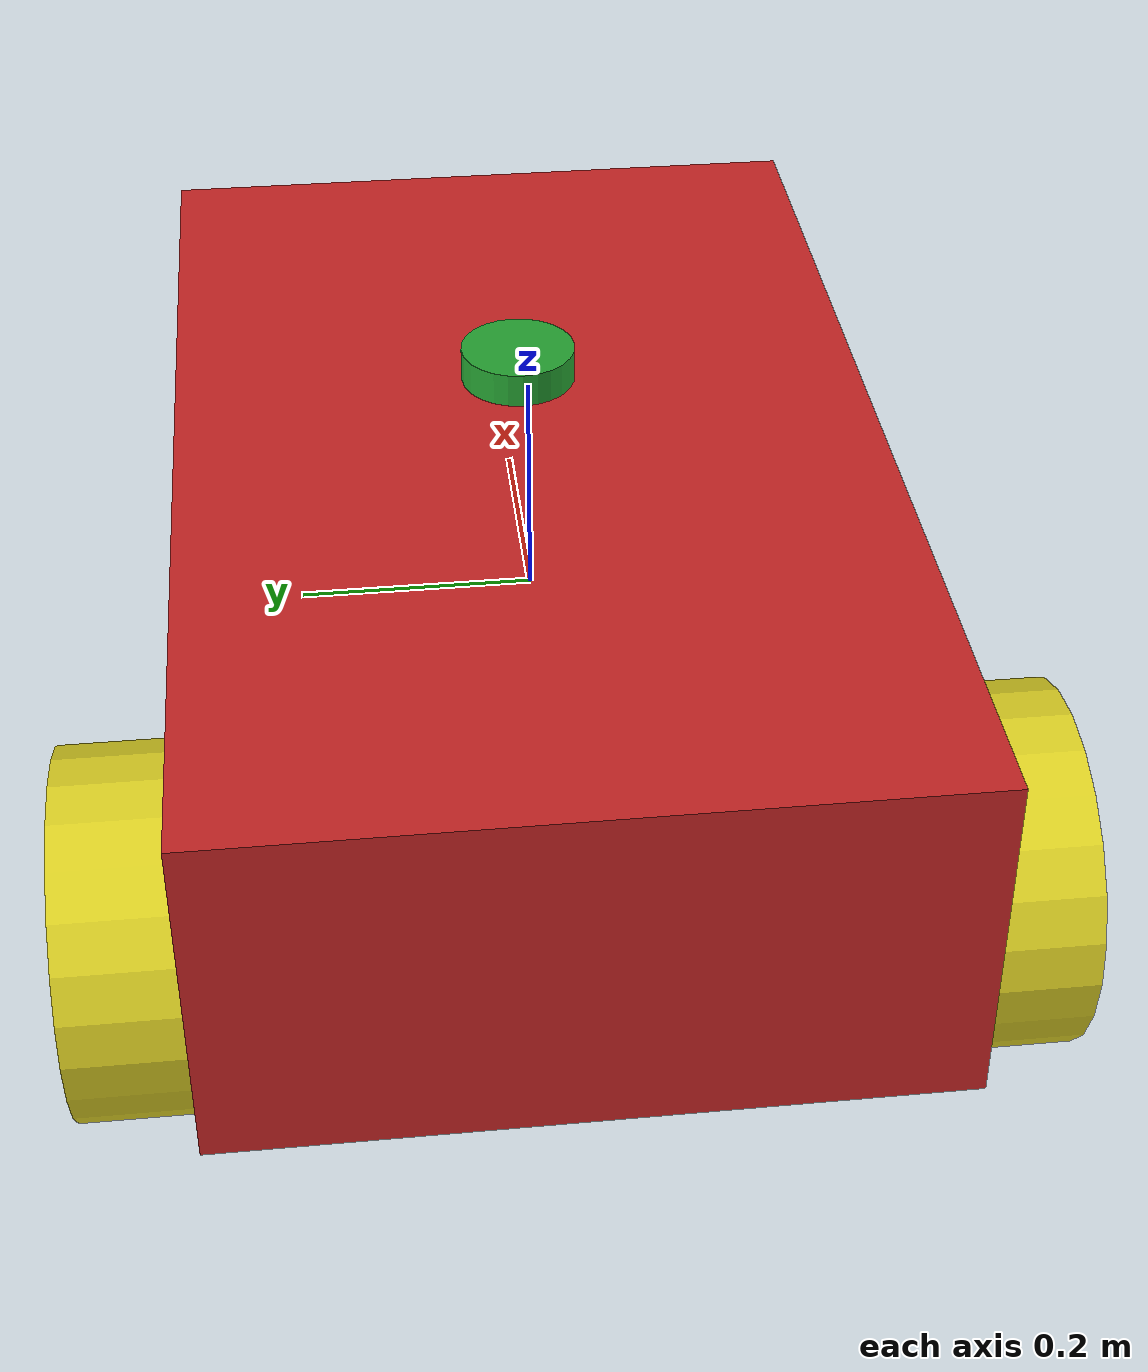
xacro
<?xml version="1.0"?>
<robot  name="differential_drive_robot" xmlns:xacro="http://www.ros.org/wiki/xacro" >

<!-- Body properties-->
<xacro:property name='body_link_x_dim' value='1.0'/>
<xacro:property name='body_link_y_dim' value='0.6'/>
<xacro:property name='body_link_z_dim' value='0.3'/>

<!-- Wheel properties-->
<xacro:property name='wheel_link_radius' value='0.15'/>
<xacro:property name='wheel_link_length' value='0.1'/>
<xacro:property name='wheel_link_z_location' value='-0.1'/>
<xacro:property name='caster_link_radius' value='0.15'/>
<xacro:property name='caster_link_z_location' value='-0.1'/>

<!-- Lidar properties-->
<xacro:property name='lidar_link_radius' value='0.05'/>
<xacro:property name='lidar_link_length' value='0.04'/>
<xacro:property name='lidar_link_z_location' value='0.16'/>

<!-- Material properties-->
<xacro:property name='body_density' value='2710.0'/>
<xacro:property name='wheel_density' value='2710.0'/>
<xacro:property name='caster_density' value='2710.0'/>
<xacro:property name='lidar_density' value='1600.0'/>

<!--Pi const-->
<xacro:property name='pi_const' value='3.14159265'/>

<!--Robot body mass, wheel mass, caster mass, lidar mass-->
<xacro:property name='body_mass' value='${body_density*body_link_x_dim*body_link_y_dim*body_link_z_dim}'/>
<xacro:property name='wheel_mass' value='${wheel_density*pi_const*wheel_link_radius*wheel_link_radius*wheel_link_length}'/>
<xacro:property name='caster_mass' value='${caster_density*(4.0/3.0)*pi_const*caster_link_radius*caster_link_radius*caster_link_radius}'/>
<xacro:property name='lidar_mass' value='${lidar_density*pi_const*lidar_link_radius*lidar_link_radius*lidar_link_length}'/>

<!--Moment of inertia-->

<!--Moment of inertia wheel-->
<xacro:property name='Iz_wheel' value='${0.5*wheel_mass*wheel_link_radius*wheel_link_radius}'/>
<xacro:property name='I_wheel' value='${1.0/12.0*wheel_mass*(3.0*wheel_link_radius*wheel_link_radius+wheel_link_length*wheel_link_length)}'/>

<!--Moment of caster wheel-->
<xacro:property name='I_caster' value='${(2.0/5.0)*caster_mass*caster_link_radius*caster_link_radius}'/>

<!--Moment of lidar-->
<xacro:property name='Iz_lidar' value='${0.5*lidar_mass*lidar_link_radius*lidar_link_radius}'/>
<xacro:property name='I_lidar' value='${1.0/12.0*lidar_mass*(3.0*lidar_link_radius*lidar_link_radius+lidar_link_length*lidar_link_length)}'/>

<xacro:macro name='inertia_wheel'>
    <inertial>
	    <origin rpy='0 0 0' xyz='0 0 0'/>
	    <mass value="${wheel_mass}"/>
	    <inertia ixx='${I_wheel}' ixy='0.0' ixz='0.0' iyy='${I_wheel}' iyz='0' izz='${Iz_wheel}'/>
    </inertial>
</xacro:macro>

<xacro:macro name='inertia_caster'>
    <inertial>
	    <origin rpy='0 0 0' xyz='0 0 0'/>
	    <mass value="${caster_mass}"/>
	    <inertia ixx='${I_caster}' ixy='0.0' ixz='0.0' iyy='${I_caster}' iyz='0' izz='${I_caster}'/>
    </inertial>
</xacro:macro>

<xacro:macro name='inertia_lidar'>
    <inertial>
        <origin rpy='0 0 0' xyz='0 0 0'/>
        <mass value="${lidar_mass}"/>
        <inertia ixx='${I_lidar}' ixy='0.0' ixz='0.0' iyy='${I_lidar}' iyz='0' izz='${Iz_lidar}'/>
    </inertial>
</xacro:macro>

<xacro:include filename='$(find driverless_robot)/model/robot.gazebo' />

<link name='base_link'>
</link>

<joint name='base_joint' type='fixed'>
    <parent link='base_link'/>
    <child link='body_link'/>
</joint>

<link name='body_link'>
    <visual>
        <geometry>
            <box size='${body_link_x_dim} ${body_link_y_dim} ${body_link_z_dim}'/>
        </geometry>
    <origin rpy='0 0 0' xyz='0 0 0'/>
    </visual>
    <collision>
        <geometry>
            <box size='${body_link_x_dim} ${body_link_y_dim} ${body_link_z_dim}'/>
        </geometry>
       <origin rpy='0 0 0' xyz='0 0 0'/>
    </collision>

    <inertial>
        <origin rpy='0 0 0' xyz='0 0 0'/>
        <mass value="${body_mass}"/>
    	<inertia ixx='${(1.0/12.0)*body_mass*(body_link_y_dim*body_link_y_dim+body_link_z_dim*body_link_z_dim)}' ixy="0" ixz='0' iyy='${(1.0/12.0)*body_mass*(body_link_x_dim*body_link_x_dim+body_link_z_dim*body_link_z_dim)}' iyz='0' izz='${(1.0/12.0)*body_mass*(body_link_y_dim*body_link_y_dim+body_link_x_dim*body_link_x_dim)}'/>
    </inertial>

</link>

<!-- Wheel 1 joint and link-->
<joint name='wheel1_joint' type='continuous'>
    <parent link='base_link'/>
    <child link='wheel1_link'/>
    <origin xyz='-${2*wheel_link_radius} ${-(body_link_y_dim/2)-(wheel_link_length/2)} ${wheel_link_z_location} ' rpy='0 0 0' />
    <axis xyz='0 1 0'/>
    <limit effort='1000' velocity='1000'/>
    <dynamics damping='1.0' fricition='1.0'/>
</joint>

<link name='wheel1_link'>
    <visual>
    	<origin rpy='1.570795 0 0' xyz='0 0 0'/>
        <geometry>
            <cylinder length='${wheel_link_length}' radius='${wheel_link_radius}'/>
        </geometry>
    </visual>
    <collision>
        <origin rpy='1.570795 0 0' xyz='0 0 0'/>
        <geometry>
            <cylinder length='${wheel_link_length}' radius='${wheel_link_radius}'/>
        </geometry>
    </collision>
    <xacro:inertia_wheel/>

</link>

<!-- Wheel 2 joint and link-->
<joint name='wheel2_joint' type='continuous'>
    <parent link='body_link'/>
    <child link='wheel2_link'/>
    <origin xyz='-${2*wheel_link_radius} ${(body_link_y_dim/2)+(wheel_link_length/2)} ${wheel_link_z_location} ' rpy='0 0 0' />
    <axis xyz='0 1 0'/>
    <limit effort='1000' velocity='1000'/>
    <dynamics damping='1.0' fricition='1.0'/>
</joint>

<link name='wheel2_link'>
    <visual>
    <origin rpy='1.570795 0 0' xyz='0 0 0'/>
        <geometry>
            <cylinder length='${wheel_link_length}' radius='${wheel_link_radius}'/>
        </geometry>
    </visual>
    <collision>
        <origin rpy='1.570795 0 0' xyz='0 0 0'/>
        <geometry>
            <cylinder length='${wheel_link_length}' radius='${wheel_link_radius}'/>
        </geometry>
    </collision>
    <xacro:inertia_wheel/>

</link>

<!-- Caster joint and link-->
<joint name='caster_joint' type='fixed'>
    <parent link='body_link'/>
    <child link='caster_link'/>
    <origin xyz='${2*caster_link_radius} 0 ${caster_link_z_location}' rpy='0 0 0'/>
</joint>

<link name='caster_link'>
    <visual>
    <origin rpy='0 0 0' xyz='0 0 0'/>
        <geometry>
            <sphere radius='${caster_link_radius}' />
        </geometry>
    </visual>
    <collision>
        <origin rpy='0 0 0' xyz='0 0 0'/>
        <geometry>
            <sphere radius='${caster_link_radius}'/>
        </geometry>
    </collision>
    <xacro:inertia_caster/>

</link>

<!-- Lidar joint and link-->
<joint name="lidar_joint" type='fixed'>
    <parent link='body_link'/>
    <child link='lidar_link'/>
    <origin xyz='0.1 0 ${lidar_link_z_location}' rpy='0 0 0'/>
</joint>

<link name='lidar_link'>
    <visual>
        <geometry>
            <cylinder radius='${lidar_link_radius}' length='${lidar_link_length}'/>
        </geometry>
    </visual>
    <collision>
        <geometry>
            <cylinder radius='${lidar_link_radius}' length='${lidar_link_length}'/>
        </geometry>
    </collision>

    <xacro:inertia_lidar/>
</link>

</robot>
